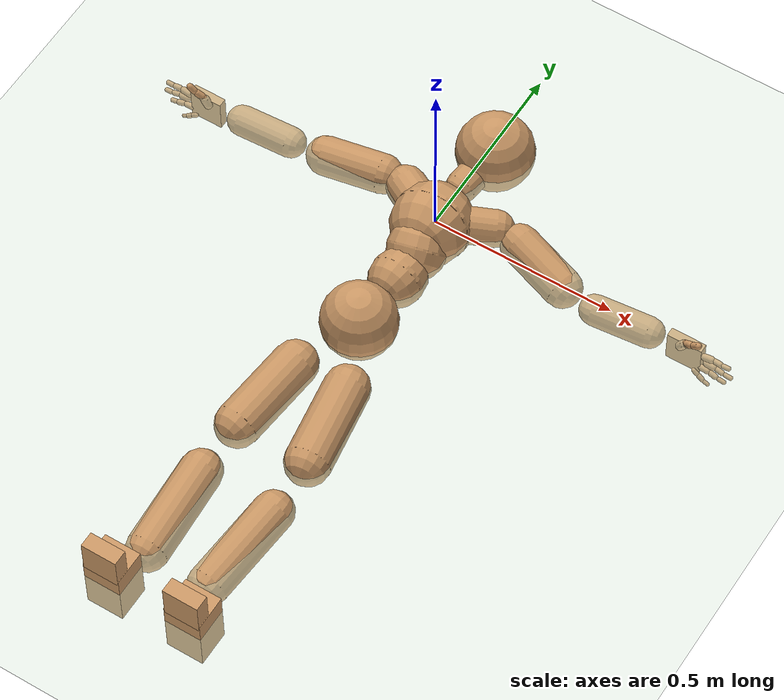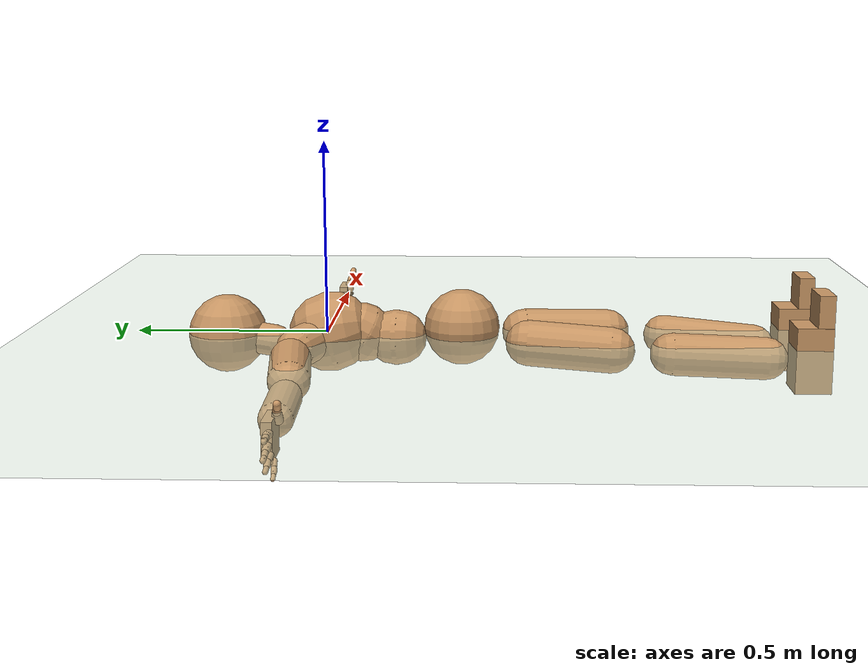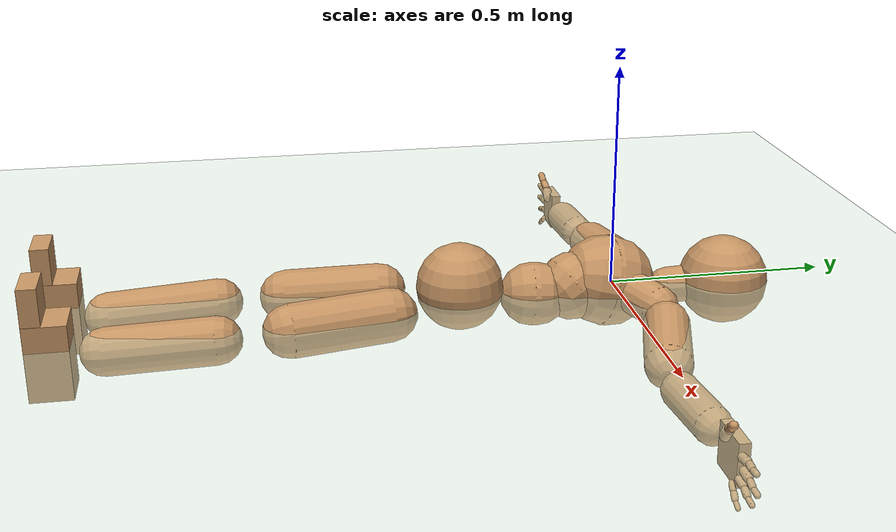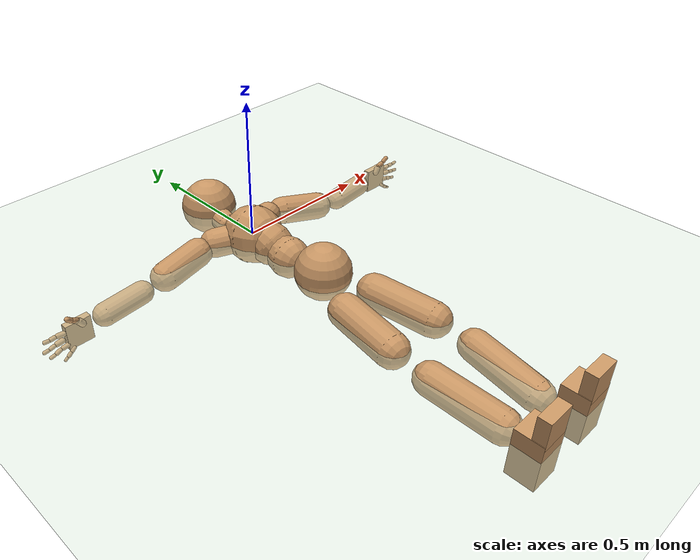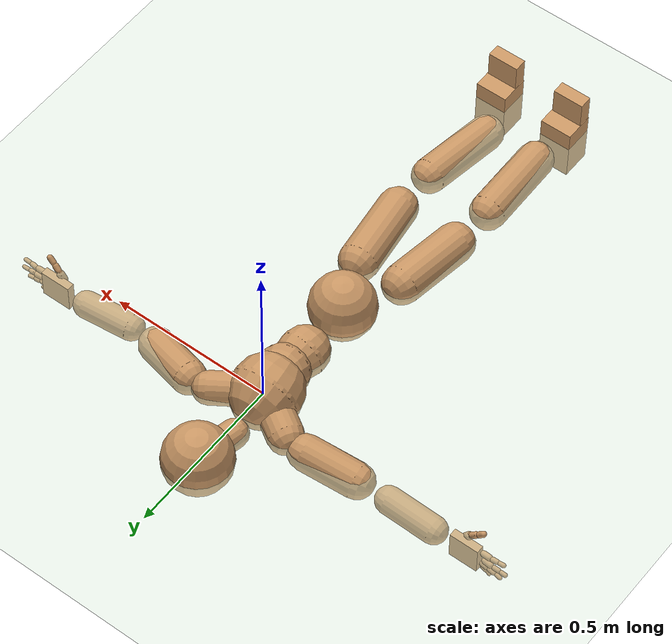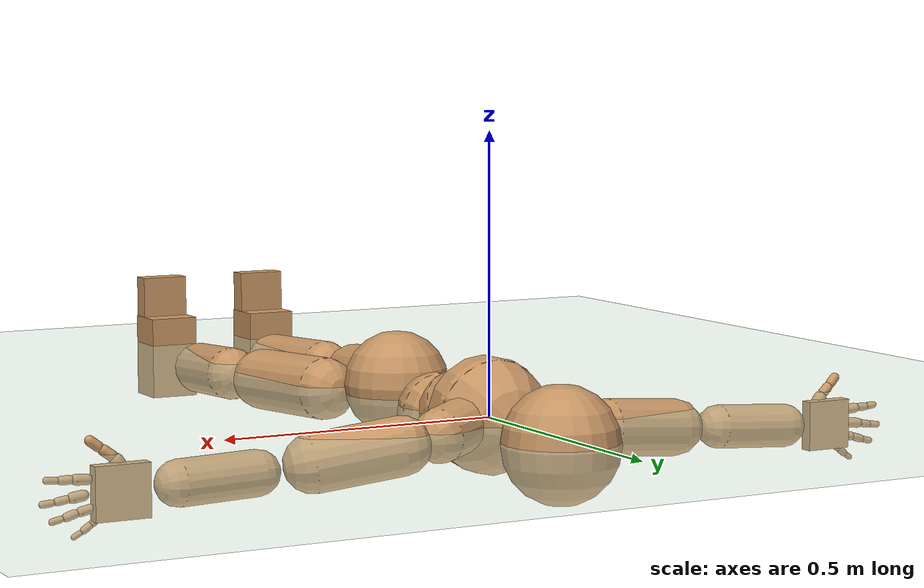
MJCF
<mujoco model="humanoid">
  <compiler coordinate="local"/>
  <default>
    <joint damping="0.0" armature="0.01" stiffness="0.0" limited="true"/>
    <geom conaffinity="1" condim="3" contype="7" margin="0.001" rgba="0.8 0.6 .4 1"/>
  </default>
  <asset>
    <texture type="skybox" builtin="gradient" rgb1=".4 .5 .6" rgb2="0 0 0" width="100" height="100"/>
    <texture builtin="flat" height="1278" mark="cross" markrgb="1 1 1" name="texgeom" random="0.01" rgb1="0.8 0.6 0.4" rgb2="0.8 0.6 0.4" type="cube" width="127"/>
    <texture builtin="checker" height="100" name="texplane" rgb1="0 0 0" rgb2="0.8 0.8 0.8" type="2d" width="100"/>
    <material name="MatPlane" reflectance="0.5" shininess="1" specular="1" texrepeat="60 60" texture="texplane"/>
    <material name="geom" texture="texgeom" texuniform="true"/>
  </asset>
  <worldbody>
    <light cutoff="100" diffuse="1 1 1" dir="-0 0 -1.3" directional="true" exponent="1" pos="0 0 1.3" specular=".1 .1 .1"/>
    <geom conaffinity="1" condim="3" name="floor" pos="0 0 0" rgba="0.8 0.9 0.8 1" size="100 100 .2" type="plane" material="MatPlane"/>
    <body name="Pelvis" pos="0.0031 -0.3534 0.0154">
      <freejoint name="Pelvis"/>
      <geom type="sphere" contype="1" conaffinity="1" density="4629.6296296296305" size="0.0984" pos="0.0000 0.0000 0.0000" name="Pelvis"/>
      <body name="L_Hip" pos="0.0592 -0.092 -0.025">
        <joint name="L_Hip_x" type="hinge" pos="0 0 0" axis="1 0 0" user="250 2.5 1 500 10 2" armature="0.01" range="-90.0000 90.0000" damping="0" stiffness="0"/>
        <joint name="L_Hip_y" type="hinge" pos="0 0 0" axis="0 1 0" user="250 2.5 1 500 10 2" armature="0.01" range="-90.0000 90.0000" damping="0" stiffness="0"/>
        <joint name="L_Hip_z" type="hinge" pos="0 0 0" axis="0 0 1" user="250 2.5 1 500 10 2" armature="0.01" range="-90.0000 90.0000" damping="0" stiffness="0"/>
        <geom type="capsule" contype="1" conaffinity="1" density="2040.816327" fromto="0.0106 -0.0736 -0.0023 0.0423 -0.2943 -0.0093" size="0.0596" name="L_Hip"/>
        <body name="L_Knee" pos="0.0529 -0.3679 -0.0116">
          <joint name="L_Knee_x" type="hinge" pos="0 0 0" axis="1 0 0" user="250 2.5 1 500 10 2" armature="0.01" range="-180.0000 180.0000" damping="0" stiffness="0"/>
          <joint name="L_Knee_y" type="hinge" pos="0 0 0" axis="0 1 0" user="250 2.5 1 500 10 2" armature="0.01" range="-5.6250 5.6250" damping="0" stiffness="0"/>
          <joint name="L_Knee_z" type="hinge" pos="0 0 0" axis="0 0 1" user="250 2.5 1 500 10 2" armature="0.01" range="-5.6250 5.6250" damping="0" stiffness="0"/>
          <geom type="capsule" contype="1" conaffinity="1" density="1234.567901" fromto="-0.0088 -0.0789 -0.0063 -0.0350 -0.3157 -0.0251" size="0.0526" name="L_Knee"/>
          <body name="L_Ankle" pos="-0.0438 -0.3946 -0.0314">
            <joint name="L_Ankle_x" type="hinge" pos="0 0 0" axis="1 0 0" user="150 2.5 1 500 10 2" armature="0.01" range="-90.0000 90.0000" damping="0" stiffness="0"/>
            <joint name="L_Ankle_y" type="hinge" pos="0 0 0" axis="0 1 0" user="150 2.5 1 500 10 2" armature="0.01" range="-90.0000 90.0000" damping="0" stiffness="0"/>
            <joint name="L_Ankle_z" type="hinge" pos="0 0 0" axis="0 0 1" user="150 2.5 1 500 10 2" armature="0.01" range="-90.0000 90.0000" damping="0" stiffness="0"/>
            <geom type="box" density="446.22116" pos="0.0408 -0.0280 0.0230" size="0.0494 0.0457 0.0841" quat="1.0000 0.0000 0.0000 0.0000" name="L_Ankle"/>
            <body name="L_Toe" pos="0.0473 -0.0568 0.1162">
              <joint name="L_Toe_x" type="hinge" pos="0 0 0" axis="1 0 0" user="150 1 1 500 1 1" armature="0.01" range="-90.0000 90.0000" damping="0" stiffness="0"/>
              <joint name="L_Toe_y" type="hinge" pos="0 0 0" axis="0 1 0" user="150 1 1 500 1 1" armature="0.01" range="-45.0000 45.0000" damping="0" stiffness="0"/>
              <joint name="L_Toe_z" type="hinge" pos="0 0 0" axis="0 0 1" user="150 1 1 500 1 1" armature="0.01" range="-45.0000 45.0000" damping="0" stiffness="0"/>
              <geom type="box" density="419.146374" pos="-0.0065 0.0032 0.0252" size="0.0476 0.0202 0.0488" quat="1.0000 0.0000 0.0000 0.0000" name="L_Toe"/>
            </body>
          </body>
        </body>
      </body>
      <body name="R_Hip" pos="-0.0641 -0.1024 -0.021">
        <joint name="R_Hip_x" type="hinge" pos="0 0 0" axis="1 0 0" user="250 2.5 1 500 10 2" armature="0.01" range="-90.0000 90.0000" damping="0" stiffness="0"/>
        <joint name="R_Hip_y" type="hinge" pos="0 0 0" axis="0 1 0" user="250 2.5 1 500 10 2" armature="0.01" range="-90.0000 90.0000" damping="0" stiffness="0"/>
        <joint name="R_Hip_z" type="hinge" pos="0 0 0" axis="0 0 1" user="250 2.5 1 500 10 2" armature="0.01" range="-90.0000 90.0000" damping="0" stiffness="0"/>
        <geom type="capsule" contype="1" conaffinity="1" density="2040.816327" fromto="-0.0085 -0.0705 -0.0037 -0.0341 -0.2820 -0.0148" size="0.0589" name="R_Hip"/>
        <body name="R_Knee" pos="-0.0426 -0.3525 -0.0185">
          <joint name="R_Knee_x" type="hinge" pos="0 0 0" axis="1 0 0" user="250 2.5 1 500 10 2" armature="0.01" range="-180.0000 180.0000" damping="0" stiffness="0"/>
          <joint name="R_Knee_y" type="hinge" pos="0 0 0" axis="0 1 0" user="250 2.5 1 500 10 2" armature="0.01" range="-5.6250 5.6250" damping="0" stiffness="0"/>
          <joint name="R_Knee_z" type="hinge" pos="0 0 0" axis="0 0 1" user="250 2.5 1 500 10 2" armature="0.01" range="-5.6250 5.6250" damping="0" stiffness="0"/>
          <geom type="capsule" contype="1" conaffinity="1" density="1234.567901" fromto="0.0031 -0.0804 -0.0039 0.0126 -0.3215 -0.0157" size="0.0544" name="R_Knee"/>
          <body name="R_Ankle" pos="0.0157 -0.4019 -0.0196">
            <joint name="R_Ankle_x" type="hinge" pos="0 0 0" axis="1 0 0" user="150 1 1 500 10 2" armature="0.01" range="-90.0000 90.0000" damping="0" stiffness="0"/>
            <joint name="R_Ankle_y" type="hinge" pos="0 0 0" axis="0 1 0" user="150 1 1 500 10 2" armature="0.01" range="-90.0000 90.0000" damping="0" stiffness="0"/>
            <joint name="R_Ankle_z" type="hinge" pos="0 0 0" axis="0 0 1" user="150 1 1 500 10 2" armature="0.01" range="-90.0000 90.0000" damping="0" stiffness="0"/>
            <geom type="box" density="446.211943" pos="-0.0244 -0.0257 0.0141" size="0.0494 0.0457 0.0841" quat="1.0000 0.0000 0.0000 0.0000" name="R_Ankle"/>
            <body name="R_Toe" pos="-0.0388 -0.0572 0.117">
              <joint name="R_Toe_x" type="hinge" pos="0 0 0" axis="1 0 0" user="150 1 1 500 1 1" armature="0.01" range="-90.0000 90.0000" damping="0" stiffness="0"/>
              <joint name="R_Toe_y" type="hinge" pos="0 0 0" axis="0 1 0" user="150 1 1 500 1 1" armature="0.01" range="-45.0000 45.0000" damping="0" stiffness="0"/>
              <joint name="R_Toe_z" type="hinge" pos="0 0 0" axis="0 0 1" user="150 1 1 500 1 1" armature="0.01" range="-45.0000 45.0000" damping="0" stiffness="0"/>
              <geom type="box" density="419.154302" pos="0.0144 0.0059 0.0154" size="0.0476 0.0202 0.0488" quat="1.0000 0.0000 0.0000 0.0000" name="R_Toe"/>
            </body>
          </body>
        </body>
      </body>
      <body name="Torso" pos="-0.0026 0.1075 -0.0277">
        <joint name="Torso_x" type="hinge" pos="0 0 0" axis="1 0 0" user="500 5 1 500 10 2" armature="0.01" range="-60.0000 60.0000" damping="0" stiffness="0"/>
        <joint name="Torso_y" type="hinge" pos="0 0 0" axis="0 1 0" user="500 5 1 500 10 2" armature="0.01" range="-60.0000 60.0000" damping="0" stiffness="0"/>
        <joint name="Torso_z" type="hinge" pos="0 0 0" axis="0 0 1" user="500 5 1 500 10 2" armature="0.01" range="-60.0000 60.0000" damping="0" stiffness="0"/>
        <geom type="capsule" contype="1" conaffinity="1" density="2040.816327" fromto="0.0045 0.0575 -0.0023 0.0055 0.0702 -0.0028" size="0.0722" name="Torso"/>
        <body name="Spine" pos="0.01 0.1277 -0.0051">
          <joint name="Spine_x" type="hinge" pos="0 0 0" axis="1 0 0" user="500 5 1 500 10 2" armature="0.01" range="-60.0000 60.0000" damping="0" stiffness="0"/>
          <joint name="Spine_y" type="hinge" pos="0 0 0" axis="0 1 0" user="500 5 1 500 10 2" armature="0.01" range="-60.0000 60.0000" damping="0" stiffness="0"/>
          <joint name="Spine_z" type="hinge" pos="0 0 0" axis="0 0 1" user="500 5 1 500 10 2" armature="0.01" range="-60.0000 60.0000" damping="0" stiffness="0"/>
          <geom type="capsule" contype="1" conaffinity="1" density="2040.816327" fromto="-0.0054 0.0224 0.0145 -0.0066 0.0273 0.0177" size="0.0765" name="Spine"/>
          <body name="Chest" pos="-0.012 0.0497 0.0323">
            <joint name="Chest_x" type="hinge" pos="0 0 0" axis="1 0 0" user="500 5 1 500 10 2" armature="0.01" range="-60.0000 60.0000" damping="0" stiffness="0"/>
            <joint name="Chest_y" type="hinge" pos="0 0 0" axis="0 1 0" user="500 5 1 500 10 2" armature="0.01" range="-60.0000 60.0000" damping="0" stiffness="0"/>
            <joint name="Chest_z" type="hinge" pos="0 0 0" axis="0 0 1" user="500 5 1 500 10 2" armature="0.01" range="-60.0000 60.0000" damping="0" stiffness="0"/>
            <geom type="capsule" contype="1" conaffinity="1" density="2040.816327" fromto="-0.0020 0.0520 -0.0110 -0.0025 0.0635 -0.0134" size="0.1041" name="Chest"/>
            <body name="Neck" pos="-0.012 0.172 -0.0413">
              <joint name="Neck_x" type="hinge" pos="0 0 0" axis="1 0 0" user="150 1 1 250 50 4" armature="0.01" range="-180.0000 180.0000" damping="0" stiffness="0"/>
              <joint name="Neck_y" type="hinge" pos="0 0 0" axis="0 1 0" user="150 1 1 250 50 4" armature="0.01" range="-180.0000 180.0000" damping="0" stiffness="0"/>
              <joint name="Neck_z" type="hinge" pos="0 0 0" axis="0 0 1" user="150 1 1 250 50 4" armature="0.01" range="-180.0000 180.0000" damping="0" stiffness="0"/>
              <geom type="capsule" contype="1" conaffinity="1" density="1000" fromto="0.0049 0.0324 0.0037 0.0196 0.1297 0.0150" size="0.0418" name="Neck"/>
              <body name="Head" pos="0.0245 0.1621 0.0187">
                <joint name="Head_x" type="hinge" pos="0 0 0" axis="1 0 0" user="150 1 1 250 50 4" armature="0.01" range="-90.0000 90.0000" damping="0" stiffness="0"/>
                <joint name="Head_y" type="hinge" pos="0 0 0" axis="0 1 0" user="150 1 1 250 50 4" armature="0.01" range="-90.0000 90.0000" damping="0" stiffness="0"/>
                <joint name="Head_z" type="hinge" pos="0 0 0" axis="0 0 1" user="150 1 1 250 50 4" armature="0.01" range="-90.0000 90.0000" damping="0" stiffness="0"/>
                <geom type="sphere" contype="1" conaffinity="1" density="1000" size="0.1020" pos="0.0000 0.0000 0.0000" name="Head"/>
              </body>
            </body>
            <body name="L_Thorax" pos="0.0454 0.0874 -0.0128">
              <joint name="L_Thorax_x" type="hinge" pos="0 0 0" axis="1 0 0" user="200 2 1 500 50 4" armature="0.01" range="-180.0000 180.0000" damping="0" stiffness="0"/>
              <joint name="L_Thorax_y" type="hinge" pos="0 0 0" axis="0 1 0" user="200 2 1 500 50 4" armature="0.01" range="-180.0000 180.0000" damping="0" stiffness="0"/>
              <joint name="L_Thorax_z" type="hinge" pos="0 0 0" axis="0 0 1" user="200 2 1 500 50 4" armature="0.01" range="-180.0000 180.0000" damping="0" stiffness="0"/>
              <geom type="capsule" contype="1" conaffinity="1" density="1000" fromto="0.0223 0.0123 -0.0034 0.0891 0.0491 -0.0135" size="0.0478" name="L_Thorax"/>
              <body name="L_Shoulder" pos="0.1114 0.0614 -0.0169">
                <joint name="L_Shoulder_x" type="hinge" pos="0 0 0" axis="1 0 0" user="200 2 1 500 50 4" armature="0.01" range="-180.0000 180.0000" damping="0" stiffness="0"/>
                <joint name="L_Shoulder_y" type="hinge" pos="0 0 0" axis="0 1 0" user="200 2 1 500 50 4" armature="0.01" range="-180.0000 180.0000" damping="0" stiffness="0"/>
                <joint name="L_Shoulder_z" type="hinge" pos="0 0 0" axis="0 0 1" user="200 2 1 500 50 4" armature="0.01" range="-180.0000 180.0000" damping="0" stiffness="0"/>
                <geom type="capsule" contype="1" conaffinity="1" density="1000" fromto="0.0488 -0.0139 -0.0081 0.1952 -0.0555 -0.0323" size="0.0516" name="L_Shoulder"/>
                <body name="L_Elbow" pos="0.244 -0.0694 -0.0404">
                  <joint name="L_Elbow_x" type="hinge" pos="0 0 0" axis="1 0 0" user="150 1 1 150 10 2" armature="0.01" range="-720.0000 720.0000" damping="0" stiffness="0"/>
                  <joint name="L_Elbow_y" type="hinge" pos="0 0 0" axis="0 1 0" user="150 1 1 150 10 2" armature="0.01" range="-720.0000 720.0000" damping="0" stiffness="0"/>
                  <joint name="L_Elbow_z" type="hinge" pos="0 0 0" axis="0 0 1" user="150 1 1 150 10 2" armature="0.01" range="-720.0000 720.0000" damping="0" stiffness="0"/>
                  <geom type="capsule" contype="1" conaffinity="1" density="1000" fromto="0.0486 0.0049 -0.0006 0.1945 0.0198 -0.0024" size="0.0397" name="L_Elbow"/>
                  <body name="L_Wrist" pos="0.2432 0.0247 -0.003">
                    <joint name="L_Wrist_x" type="hinge" pos="0 0 0" axis="1 0 0" user="100 1 1 150 1 1" armature="0.01" range="-180.0000 180.0000" damping="0" stiffness="0"/>
                    <joint name="L_Wrist_y" type="hinge" pos="0 0 0" axis="0 1 0" user="100 1 1 150 1 1" armature="0.01" range="-180.0000 180.0000" damping="0" stiffness="0"/>
                    <joint name="L_Wrist_z" type="hinge" pos="0 0 0" axis="0 0 1" user="100 1 1 150 1 1" armature="0.01" range="-180.0000 180.0000" damping="0" stiffness="0"/>
                    <geom type="box" density="1205.90108" pos="0.0510 -0.0008 -0.0031" size="0.0474 0.012 0.0456" quat="1.0000 0.0000 0.0000 0.0000" name="L_Wrist"/>
                    <body name="L_Index1" pos="0.0995 -0.0081 0.0194">
                      <joint name="L_Index1_x" type="hinge" pos="0 0 0" axis="1 0 0" user="100 10 1 150" armature="0.01" range="-180.0000 180.0000" damping="0" stiffness="0"/>
                      <joint name="L_Index1_y" type="hinge" pos="0 0 0" axis="0 1 0" user="100 10 1 150" armature="0.01" range="-180.0000 180.0000" damping="0" stiffness="0"/>
                      <joint name="L_Index1_z" type="hinge" pos="0 0 0" axis="0 0 1" user="100 10 1 150" armature="0.01" range="-180.0000 180.0000" damping="0" stiffness="0"/>
                      <geom type="capsule" contype="1" conaffinity="1" density="1000" fromto="0.0063 0.0005 0.0006 0.0252 0.0018 0.0023" size="0.0091" name="L_Index1"/>
                      <body name="L_Index2" pos="0.0315 0.0023 0.0029">
                        <joint name="L_Index2_x" type="hinge" pos="0 0 0" axis="1 0 0" user="100 10 1 150" armature="0.01" range="-180.0000 180.0000" damping="0" stiffness="0"/>
                        <joint name="L_Index2_y" type="hinge" pos="0 0 0" axis="0 1 0" user="100 10 1 150" armature="0.01" range="-180.0000 180.0000" damping="0" stiffness="0"/>
                        <joint name="L_Index2_z" type="hinge" pos="0 0 0" axis="0 0 1" user="100 10 1 150" armature="0.01" range="-180.0000 180.0000" damping="0" stiffness="0"/>
                        <geom type="capsule" contype="1" conaffinity="1" density="1000" fromto="0.0044 -0.0005 0.0000 0.0177 -0.0018 0.0000" size="0.0075" name="L_Index2"/>
                        <body name="L_Index3" pos="0.0222 -0.0023 0">
                          <joint name="L_Index3_x" type="hinge" pos="0 0 0" axis="1 0 0" user="100 10 1 150" armature="0.01" range="-180.0000 180.0000" damping="0" stiffness="0"/>
                          <joint name="L_Index3_y" type="hinge" pos="0 0 0" axis="0 1 0" user="100 10 1 150" armature="0.01" range="-180.0000 180.0000" damping="0" stiffness="0"/>
                          <joint name="L_Index3_z" type="hinge" pos="0 0 0" axis="0 0 1" user="100 10 1 150" armature="0.01" range="-180.0000 180.0000" damping="0" stiffness="0"/>
                          <geom type="capsule" contype="1" conaffinity="1" density="1000" fromto="0.0048 -0.0001 0.0004 0.0193 -0.0002 0.0016" size="0.0063" name="L_Index3"/>
                        </body>
                      </body>
                    </body>
                    <body name="L_Middle1" pos="0.1069 -0.0057 -0.0039">
                      <joint name="L_Middle1_x" type="hinge" pos="0 0 0" axis="1 0 0" user="100 10 1 150" armature="0.01" range="-180.0000 180.0000" damping="0" stiffness="0"/>
                      <joint name="L_Middle1_y" type="hinge" pos="0 0 0" axis="0 1 0" user="100 10 1 150" armature="0.01" range="-180.0000 180.0000" damping="0" stiffness="0"/>
                      <joint name="L_Middle1_z" type="hinge" pos="0 0 0" axis="0 0 1" user="100 10 1 150" armature="0.01" range="-180.0000 180.0000" damping="0" stiffness="0"/>
                      <geom type="capsule" contype="1" conaffinity="1" density="1000" fromto="0.0060 0.0002 -0.0008 0.0241 0.0007 -0.0033" size="0.0093" name="L_Middle1"/>
                      <body name="L_Middle2" pos="0.0302 0.0009 -0.0041">
                        <joint name="L_Middle2_x" type="hinge" pos="0 0 0" axis="1 0 0" user="100 10 1 150" armature="0.01" range="-180.0000 180.0000" damping="0" stiffness="0"/>
                        <joint name="L_Middle2_y" type="hinge" pos="0 0 0" axis="0 1 0" user="100 10 1 150" armature="0.01" range="-180.0000 180.0000" damping="0" stiffness="0"/>
                        <joint name="L_Middle2_z" type="hinge" pos="0 0 0" axis="0 0 1" user="100 10 1 150" armature="0.01" range="-180.0000 180.0000" damping="0" stiffness="0"/>
                        <geom type="capsule" contype="1" conaffinity="1" density="1000" fromto="0.0046 -0.0004 -0.0008 0.0186 -0.0016 -0.0033" size="0.0069" name="L_Middle2"/>
                        <body name="L_Middle3" pos="0.0232 -0.0019 -0.0042">
                          <joint name="L_Middle3_x" type="hinge" pos="0 0 0" axis="1 0 0" user="100 10 1 150" armature="0.01" range="-180.0000 180.0000" damping="0" stiffness="0"/>
                          <joint name="L_Middle3_y" type="hinge" pos="0 0 0" axis="0 1 0" user="100 10 1 150" armature="0.01" range="-180.0000 180.0000" damping="0" stiffness="0"/>
                          <joint name="L_Middle3_z" type="hinge" pos="0 0 0" axis="0 0 1" user="100 10 1 150" armature="0.01" range="-180.0000 180.0000" damping="0" stiffness="0"/>
                          <geom type="capsule" contype="1" conaffinity="1" density="1000" fromto="0.0050 0.0000 -0.0004 0.0202 0.0000 -0.0017" size="0.006" name="L_Middle3"/>
                        </body>
                      </body>
                    </body>
                    <body name="L_Pinky1" pos="0.0818 -0.0142 -0.0433">
                      <joint name="L_Pinky1_x" type="hinge" pos="0 0 0" axis="1 0 0" user="100 10 1 150" armature="0.01" range="-180.0000 180.0000" damping="0" stiffness="0"/>
                      <joint name="L_Pinky1_y" type="hinge" pos="0 0 0" axis="0 1 0" user="100 10 1 150" armature="0.01" range="-180.0000 180.0000" damping="0" stiffness="0"/>
                      <joint name="L_Pinky1_z" type="hinge" pos="0 0 0" axis="0 0 1" user="100 10 1 150" armature="0.01" range="-180.0000 180.0000" damping="0" stiffness="0"/>
                      <geom type="capsule" contype="1" conaffinity="1" density="1000" fromto="0.0030 -0.0002 -0.0024 0.0121 -0.0009 -0.0095" size="0.0066" name="L_Pinky1"/>
                      <body name="L_Pinky2" pos="0.0151 -0.0011 -0.0118">
                        <joint name="L_Pinky2_x" type="hinge" pos="0 0 0" axis="1 0 0" user="100 10 1 150" armature="0.01" range="-180.0000 180.0000" damping="0" stiffness="0"/>
                        <joint name="L_Pinky2_y" type="hinge" pos="0 0 0" axis="0 1 0" user="100 10 1 150" armature="0.01" range="-180.0000 180.0000" damping="0" stiffness="0"/>
                        <joint name="L_Pinky2_z" type="hinge" pos="0 0 0" axis="0 0 1" user="100 10 1 150" armature="0.01" range="-180.0000 180.0000" damping="0" stiffness="0"/>
                        <geom type="capsule" contype="1" conaffinity="1" density="1000" fromto="0.0031 -0.0003 -0.0022 0.0122 -0.0013 -0.0088" size="0.0065" name="L_Pinky2"/>
                        <body name="L_Pinky3" pos="0.0153 -0.0016 -0.011">
                          <joint name="L_Pinky3_x" type="hinge" pos="0 0 0" axis="1 0 0" user="100 10 1 150" armature="0.01" range="-180.0000 180.0000" damping="0" stiffness="0"/>
                          <joint name="L_Pinky3_y" type="hinge" pos="0 0 0" axis="0 1 0" user="100 10 1 150" armature="0.01" range="-180.0000 180.0000" damping="0" stiffness="0"/>
                          <joint name="L_Pinky3_z" type="hinge" pos="0 0 0" axis="0 0 1" user="100 10 1 150" armature="0.01" range="-180.0000 180.0000" damping="0" stiffness="0"/>
                          <geom type="capsule" contype="1" conaffinity="1" density="1000" fromto="0.0035 0.0001 -0.0018 0.0138 0.0003 -0.0072" size="0.0049" name="L_Pinky3"/>
                        </body>
                      </body>
                    </body>
                    <body name="L_Ring1" pos="0.095 -0.0088 -0.0272">
                      <joint name="L_Ring1_x" type="hinge" pos="0 0 0" axis="1 0 0" user="100 10 1 150" armature="0.01" range="-180.0000 180.0000" damping="0" stiffness="0"/>
                      <joint name="L_Ring1_y" type="hinge" pos="0 0 0" axis="0 1 0" user="100 10 1 150" armature="0.01" range="-180.0000 180.0000" damping="0" stiffness="0"/>
                      <joint name="L_Ring1_z" type="hinge" pos="0 0 0" axis="0 0 1" user="100 10 1 150" armature="0.01" range="-180.0000 180.0000" damping="0" stiffness="0"/>
                      <geom type="capsule" contype="1" conaffinity="1" density="1000" fromto="0.0055 0.0003 -0.0010 0.0221 0.0013 -0.0042" size="0.008" name="L_Ring1"/>
                      <body name="L_Ring2" pos="0.0276 0.0016 -0.0052">
                        <joint name="L_Ring2_x" type="hinge" pos="0 0 0" axis="1 0 0" user="100 10 1 150" armature="0.01" range="-180.0000 180.0000" damping="0" stiffness="0"/>
                        <joint name="L_Ring2_y" type="hinge" pos="0 0 0" axis="0 1 0" user="100 10 1 150" armature="0.01" range="-180.0000 180.0000" damping="0" stiffness="0"/>
                        <joint name="L_Ring2_z" type="hinge" pos="0 0 0" axis="0 0 1" user="100 10 1 150" armature="0.01" range="-180.0000 180.0000" damping="0" stiffness="0"/>
                        <geom type="capsule" contype="1" conaffinity="1" density="1000" fromto="0.0045 -0.0003 -0.0014 0.0180 -0.0011 -0.0057" size="0.0074" name="L_Ring2"/>
                        <body name="L_Ring3" pos="0.0225 -0.0014 -0.0071">
                          <joint name="L_Ring3_x" type="hinge" pos="0 0 0" axis="1 0 0" user="100 10 1 150" armature="0.01" range="-180.0000 180.0000" damping="0" stiffness="0"/>
                          <joint name="L_Ring3_y" type="hinge" pos="0 0 0" axis="0 1 0" user="100 10 1 150" armature="0.01" range="-180.0000 180.0000" damping="0" stiffness="0"/>
                          <joint name="L_Ring3_z" type="hinge" pos="0 0 0" axis="0 0 1" user="100 10 1 150" armature="0.01" range="-180.0000 180.0000" damping="0" stiffness="0"/>
                          <geom type="capsule" contype="1" conaffinity="1" density="1000" fromto="0.0049 0.0001 -0.0010 0.0196 0.0005 -0.0041" size="0.0057" name="L_Ring3"/>
                        </body>
                      </body>
                    </body>
                    <body name="L_Thumb1" pos="0.0391 -0.0172 0.0257">
                      <joint name="L_Thumb1_x" type="hinge" pos="0 0 0" axis="1 0 0" user="100 10 1 150" armature="0.01" range="-180.0000 180.0000" damping="0" stiffness="0"/>
                      <joint name="L_Thumb1_y" type="hinge" pos="0 0 0" axis="0 1 0" user="100 10 1 150" armature="0.01" range="-180.0000 180.0000" damping="0" stiffness="0"/>
                      <joint name="L_Thumb1_z" type="hinge" pos="0 0 0" axis="0 0 1" user="100 10 1 150" armature="0.01" range="-180.0000 180.0000" damping="0" stiffness="0"/>
                      <geom type="capsule" contype="1" conaffinity="1" density="1000" fromto="0.0033 0.0002 0.0049 0.0133 0.0007 0.0196" size="0.0118" name="L_Thumb1"/>
                      <body name="L_Thumb2" pos="0.0167 0.0009 0.0245">
                        <joint name="L_Thumb2_x" type="hinge" pos="0 0 0" axis="1 0 0" user="100 10 1 150" armature="0.01" range="-180.0000 180.0000" damping="0" stiffness="0"/>
                        <joint name="L_Thumb2_y" type="hinge" pos="0 0 0" axis="0 1 0" user="100 10 1 150" armature="0.01" range="-180.0000 180.0000" damping="0" stiffness="0"/>
                        <joint name="L_Thumb2_z" type="hinge" pos="0 0 0" axis="0 0 1" user="100 10 1 150" armature="0.01" range="-180.0000 180.0000" damping="0" stiffness="0"/>
                        <geom type="capsule" contype="1" conaffinity="1" density="1000" fromto="0.0041 -0.0010 0.0030 0.0162 -0.0041 0.0122" size="0.0094" name="L_Thumb2"/>
                        <body name="L_Thumb3" pos="0.0203 -0.0051 0.0152">
                          <joint name="L_Thumb3_x" type="hinge" pos="0 0 0" axis="1 0 0" user="100 10 1 150" armature="0.01" range="-180.0000 180.0000" damping="0" stiffness="0"/>
                          <joint name="L_Thumb3_y" type="hinge" pos="0 0 0" axis="0 1 0" user="100 10 1 150" armature="0.01" range="-180.0000 180.0000" damping="0" stiffness="0"/>
                          <joint name="L_Thumb3_z" type="hinge" pos="0 0 0" axis="0 0 1" user="100 10 1 150" armature="0.01" range="-180.0000 180.0000" damping="0" stiffness="0"/>
                          <geom type="capsule" contype="1" conaffinity="1" density="1000" fromto="0.0045 -0.0006 0.0034 0.0178 -0.0025 0.0138" size="0.0087" name="L_Thumb3"/>
                        </body>
                      </body>
                    </body>
                  </body>
                </body>
              </body>
            </body>
            <body name="R_Thorax" pos="-0.0467 0.0869 -0.0191">
              <joint name="R_Thorax_x" type="hinge" pos="0 0 0" axis="1 0 0" user="200 2 1 150 10 2" armature="0.01" range="-180.0000 180.0000" damping="0" stiffness="0"/>
              <joint name="R_Thorax_y" type="hinge" pos="0 0 0" axis="0 1 0" user="200 2 1 150 10 2" armature="0.01" range="-180.0000 180.0000" damping="0" stiffness="0"/>
              <joint name="R_Thorax_z" type="hinge" pos="0 0 0" axis="0 0 1" user="200 2 1 150 10 2" armature="0.01" range="-180.0000 180.0000" damping="0" stiffness="0"/>
              <geom type="capsule" contype="1" conaffinity="1" density="1000" fromto="-0.0190 0.0113 -0.0028 -0.0761 0.0451 -0.0112" size="0.0527" name="R_Thorax"/>
              <body name="R_Shoulder" pos="-0.0952 0.0563 -0.014">
                <joint name="R_Shoulder_x" type="hinge" pos="0 0 0" axis="1 0 0" user="200 2 1 250 10 2" armature="0.01" range="-180.0000 180.0000" damping="0" stiffness="0"/>
                <joint name="R_Shoulder_y" type="hinge" pos="0 0 0" axis="0 1 0" user="200 2 1 250 10 2" armature="0.01" range="-180.0000 180.0000" damping="0" stiffness="0"/>
                <joint name="R_Shoulder_z" type="hinge" pos="0 0 0" axis="0 0 1" user="200 2 1 250 10 2" armature="0.01" range="-180.0000 180.0000" damping="0" stiffness="0"/>
                <geom type="capsule" contype="1" conaffinity="1" density="1000" fromto="-0.0520 -0.0065 -0.0049 -0.2081 -0.0262 -0.0195" size="0.0515" name="R_Shoulder"/>
                <body name="R_Elbow" pos="-0.2602 -0.0327 -0.0244">
                  <joint name="R_Elbow_x" type="hinge" pos="0 0 0" axis="1 0 0" user="150 1 1 150 10 2" armature="0.01" range="-720.0000 720.0000" damping="0" stiffness="0"/>
                  <joint name="R_Elbow_y" type="hinge" pos="0 0 0" axis="0 1 0" user="150 1 1 150 10 2" armature="0.01" range="-720.0000 720.0000" damping="0" stiffness="0"/>
                  <joint name="R_Elbow_z" type="hinge" pos="0 0 0" axis="0 0 1" user="150 1 1 150 10 2" armature="0.01" range="-720.0000 720.0000" damping="0" stiffness="0"/>
                  <geom type="capsule" contype="1" conaffinity="1" density="1000" fromto="-0.0482 -0.0007 -0.0031 -0.1927 -0.0026 -0.0124" size="0.04" name="R_Elbow"/>
                  <body name="R_Wrist" pos="-0.2408 -0.0033 -0.0155">
                    <joint name="R_Wrist_x" type="hinge" pos="0 0 0" axis="1 0 0" user="100 1 1 150 1 1" armature="0.01" range="-180.0000 180.0000" damping="0" stiffness="0"/>
                    <joint name="R_Wrist_y" type="hinge" pos="0 0 0" axis="0 1 0" user="100 1 1 150 1 1" armature="0.01" range="-180.0000 180.0000" damping="0" stiffness="0"/>
                    <joint name="R_Wrist_z" type="hinge" pos="0 0 0" axis="0 0 1" user="100 1 1 150 1 1" armature="0.01" range="-180.0000 180.0000" damping="0" stiffness="0"/>
                    <geom type="box" density="1242.39938" pos="-0.0525 -0.0039 -0.0032" size="0.0444 0.012 0.0456" quat="1.0000 0.0000 0.0000 0.0000" name="R_Wrist"/>
                    <body name="R_Index1" pos="-0.0976 -0.0112 0.0193">
                      <joint name="R_Index1_x" type="hinge" pos="0 0 0" axis="1 0 0" user="100 10 1 150" armature="0.01" range="-180.0000 180.0000" damping="0" stiffness="0"/>
                      <joint name="R_Index1_y" type="hinge" pos="0 0 0" axis="0 1 0" user="100 10 1 150" armature="0.01" range="-180.0000 180.0000" damping="0" stiffness="0"/>
                      <joint name="R_Index1_z" type="hinge" pos="0 0 0" axis="0 0 1" user="100 10 1 150" armature="0.01" range="-180.0000 180.0000" damping="0" stiffness="0"/>
                      <geom type="capsule" contype="1" conaffinity="1" density="1000" fromto="-0.0063 0.0005 0.0006 -0.0252 0.0018 0.0023" size="0.0091" name="R_Index1"/>
                      <body name="R_Index2" pos="-0.0315 0.0023 0.0029">
                        <joint name="R_Index2_x" type="hinge" pos="0 0 0" axis="1 0 0" user="100 10 1 150" armature="0.01" range="-180.0000 180.0000" damping="0" stiffness="0"/>
                        <joint name="R_Index2_y" type="hinge" pos="0 0 0" axis="0 1 0" user="100 10 1 150" armature="0.01" range="-180.0000 180.0000" damping="0" stiffness="0"/>
                        <joint name="R_Index2_z" type="hinge" pos="0 0 0" axis="0 0 1" user="100 10 1 150" armature="0.01" range="-180.0000 180.0000" damping="0" stiffness="0"/>
                        <geom type="capsule" contype="1" conaffinity="1" density="1000" fromto="-0.0044 -0.0005 0.0000 -0.0177 -0.0018 0.0000" size="0.0075" name="R_Index2"/>
                        <body name="R_Index3" pos="-0.0222 -0.0023 0">
                          <joint name="R_Index3_x" type="hinge" pos="0 0 0" axis="1 0 0" user="100 10 1 150" armature="0.01" range="-180.0000 180.0000" damping="0" stiffness="0"/>
                          <joint name="R_Index3_y" type="hinge" pos="0 0 0" axis="0 1 0" user="100 10 1 150" armature="0.01" range="-180.0000 180.0000" damping="0" stiffness="0"/>
                          <joint name="R_Index3_z" type="hinge" pos="0 0 0" axis="0 0 1" user="100 10 1 150" armature="0.01" range="-180.0000 180.0000" damping="0" stiffness="0"/>
                          <geom type="capsule" contype="1" conaffinity="1" density="1000" fromto="-0.0040 -0.0001 0.0004 -0.0161 -0.0002 0.0016" size="0.0066" name="R_Index3"/>
                        </body>
                      </body>
                    </body>
                    <body name="R_Middle1" pos="-0.1049 -0.0089 -0.004">
                      <joint name="R_Middle1_x" type="hinge" pos="0 0 0" axis="1 0 0" user="100 10 1 150" armature="0.01" range="-180.0000 180.0000" damping="0" stiffness="0"/>
                      <joint name="R_Middle1_y" type="hinge" pos="0 0 0" axis="0 1 0" user="100 10 1 150" armature="0.01" range="-180.0000 180.0000" damping="0" stiffness="0"/>
                      <joint name="R_Middle1_z" type="hinge" pos="0 0 0" axis="0 0 1" user="100 10 1 150" armature="0.01" range="-180.0000 180.0000" damping="0" stiffness="0"/>
                      <geom type="capsule" contype="1" conaffinity="1" density="1000" fromto="-0.0060 0.0002 -0.0008 -0.0241 0.0007 -0.0033" size="0.0093" name="R_Middle1"/>
                      <body name="R_Middle2" pos="-0.0302 0.0009 -0.0041">
                        <joint name="R_Middle2_x" type="hinge" pos="0 0 0" axis="1 0 0" user="100 10 1 150" armature="0.01" range="-180.0000 180.0000" damping="0" stiffness="0"/>
                        <joint name="R_Middle2_y" type="hinge" pos="0 0 0" axis="0 1 0" user="100 10 1 150" armature="0.01" range="-180.0000 180.0000" damping="0" stiffness="0"/>
                        <joint name="R_Middle2_z" type="hinge" pos="0 0 0" axis="0 0 1" user="100 10 1 150" armature="0.01" range="-180.0000 180.0000" damping="0" stiffness="0"/>
                        <geom type="capsule" contype="1" conaffinity="1" density="1000" fromto="-0.0046 -0.0004 -0.0008 -0.0186 -0.0016 -0.0033" size="0.0069" name="R_Middle2"/>
                        <body name="R_Middle3" pos="-0.0232 -0.0019 -0.0042">
                          <joint name="R_Middle3_x" type="hinge" pos="0 0 0" axis="1 0 0" user="100 10 1 150" armature="0.01" range="-180.0000 180.0000" damping="0" stiffness="0"/>
                          <joint name="R_Middle3_y" type="hinge" pos="0 0 0" axis="0 1 0" user="100 10 1 150" armature="0.01" range="-180.0000 180.0000" damping="0" stiffness="0"/>
                          <joint name="R_Middle3_z" type="hinge" pos="0 0 0" axis="0 0 1" user="100 10 1 150" armature="0.01" range="-180.0000 180.0000" damping="0" stiffness="0"/>
                          <geom type="capsule" contype="1" conaffinity="1" density="1000" fromto="-0.0042 0.0000 -0.0004 -0.0170 0.0000 -0.0017" size="0.0063" name="R_Middle3"/>
                        </body>
                      </body>
                    </body>
                    <body name="R_Pinky1" pos="-0.0798 -0.0173 -0.0435">
                      <joint name="R_Pinky1_x" type="hinge" pos="0 0 0" axis="1 0 0" user="100 10 1 150" armature="0.01" range="-180.0000 180.0000" damping="0" stiffness="0"/>
                      <joint name="R_Pinky1_y" type="hinge" pos="0 0 0" axis="0 1 0" user="100 10 1 150" armature="0.01" range="-180.0000 180.0000" damping="0" stiffness="0"/>
                      <joint name="R_Pinky1_z" type="hinge" pos="0 0 0" axis="0 0 1" user="100 10 1 150" armature="0.01" range="-180.0000 180.0000" damping="0" stiffness="0"/>
                      <geom type="capsule" contype="1" conaffinity="1" density="1000" fromto="-0.0030 -0.0002 -0.0024 -0.0121 -0.0009 -0.0095" size="0.0066" name="R_Pinky1"/>
                      <body name="R_Pinky2" pos="-0.0151 -0.0011 -0.0118">
                        <joint name="R_Pinky2_x" type="hinge" pos="0 0 0" axis="1 0 0" user="100 10 1 150" armature="0.01" range="-180.0000 180.0000" damping="0" stiffness="0"/>
                        <joint name="R_Pinky2_y" type="hinge" pos="0 0 0" axis="0 1 0" user="100 10 1 150" armature="0.01" range="-180.0000 180.0000" damping="0" stiffness="0"/>
                        <joint name="R_Pinky2_z" type="hinge" pos="0 0 0" axis="0 0 1" user="100 10 1 150" armature="0.01" range="-180.0000 180.0000" damping="0" stiffness="0"/>
                        <geom type="capsule" contype="1" conaffinity="1" density="1000" fromto="-0.0031 -0.0003 -0.0022 -0.0122 -0.0013 -0.0088" size="0.0065" name="R_Pinky2"/>
                        <body name="R_Pinky3" pos="-0.0153 -0.0016 -0.011">
                          <joint name="R_Pinky3_x" type="hinge" pos="0 0 0" axis="1 0 0" user="100 10 1 150" armature="0.01" range="-180.0000 180.0000" damping="0" stiffness="0"/>
                          <joint name="R_Pinky3_y" type="hinge" pos="0 0 0" axis="0 1 0" user="100 10 1 150" armature="0.01" range="-180.0000 180.0000" damping="0" stiffness="0"/>
                          <joint name="R_Pinky3_z" type="hinge" pos="0 0 0" axis="0 0 1" user="100 10 1 150" armature="0.01" range="-180.0000 180.0000" damping="0" stiffness="0"/>
                          <geom type="capsule" contype="1" conaffinity="1" density="1000" fromto="-0.0027 0.0001 -0.0018 -0.0106 0.0003 -0.0072" size="0.0051" name="R_Pinky3"/>
                        </body>
                      </body>
                    </body>
                    <body name="R_Ring1" pos="-0.093 -0.0119 -0.0273">
                      <joint name="R_Ring1_x" type="hinge" pos="0 0 0" axis="1 0 0" user="100 10 1 150" armature="0.01" range="-180.0000 180.0000" damping="0" stiffness="0"/>
                      <joint name="R_Ring1_y" type="hinge" pos="0 0 0" axis="0 1 0" user="100 10 1 150" armature="0.01" range="-180.0000 180.0000" damping="0" stiffness="0"/>
                      <joint name="R_Ring1_z" type="hinge" pos="0 0 0" axis="0 0 1" user="100 10 1 150" armature="0.01" range="-180.0000 180.0000" damping="0" stiffness="0"/>
                      <geom type="capsule" contype="1" conaffinity="1" density="1000" fromto="-0.0055 0.0003 -0.0010 -0.0221 0.0013 -0.0042" size="0.008" name="R_Ring1"/>
                      <body name="R_Ring2" pos="-0.0276 0.0016 -0.0052">
                        <joint name="R_Ring2_x" type="hinge" pos="0 0 0" axis="1 0 0" user="100 10 1 150" armature="0.01" range="-180.0000 180.0000" damping="0" stiffness="0"/>
                        <joint name="R_Ring2_y" type="hinge" pos="0 0 0" axis="0 1 0" user="100 10 1 150" armature="0.01" range="-180.0000 180.0000" damping="0" stiffness="0"/>
                        <joint name="R_Ring2_z" type="hinge" pos="0 0 0" axis="0 0 1" user="100 10 1 150" armature="0.01" range="-180.0000 180.0000" damping="0" stiffness="0"/>
                        <geom type="capsule" contype="1" conaffinity="1" density="1000" fromto="-0.0045 -0.0003 -0.0014 -0.0180 -0.0011 -0.0057" size="0.0074" name="R_Ring2"/>
                        <body name="R_Ring3" pos="-0.0225 -0.0014 -0.0071">
                          <joint name="R_Ring3_x" type="hinge" pos="0 0 0" axis="1 0 0" user="100 10 1 150" armature="0.01" range="-180.0000 180.0000" damping="0" stiffness="0"/>
                          <joint name="R_Ring3_y" type="hinge" pos="0 0 0" axis="0 1 0" user="100 10 1 150" armature="0.01" range="-180.0000 180.0000" damping="0" stiffness="0"/>
                          <joint name="R_Ring3_z" type="hinge" pos="0 0 0" axis="0 0 1" user="100 10 1 150" armature="0.01" range="-180.0000 180.0000" damping="0" stiffness="0"/>
                          <geom type="capsule" contype="1" conaffinity="1" density="1000" fromto="-0.0041 0.0001 -0.0010 -0.0164 0.0005 -0.0041" size="0.006" name="R_Ring3"/>
                        </body>
                      </body>
                    </body>
                    <body name="R_Thumb1" pos="-0.0371 -0.0203 0.0256">
                      <joint name="R_Thumb1_x" type="hinge" pos="0 0 0" axis="1 0 0" user="100 10 1 150" armature="0.01" range="-180.0000 180.0000" damping="0" stiffness="0"/>
                      <joint name="R_Thumb1_y" type="hinge" pos="0 0 0" axis="0 1 0" user="100 10 1 150" armature="0.01" range="-180.0000 180.0000" damping="0" stiffness="0"/>
                      <joint name="R_Thumb1_z" type="hinge" pos="0 0 0" axis="0 0 1" user="100 10 1 150" armature="0.01" range="-180.0000 180.0000" damping="0" stiffness="0"/>
                      <geom type="capsule" contype="1" conaffinity="1" density="1000" fromto="-0.0033 0.0002 0.0049 -0.0133 0.0007 0.0196" size="0.0118" name="R_Thumb1"/>
                      <body name="R_Thumb2" pos="-0.0167 0.0009 0.0245">
                        <joint name="R_Thumb2_x" type="hinge" pos="0 0 0" axis="1 0 0" user="100 10 1 150" armature="0.01" range="-180.0000 180.0000" damping="0" stiffness="0"/>
                        <joint name="R_Thumb2_y" type="hinge" pos="0 0 0" axis="0 1 0" user="100 10 1 150" armature="0.01" range="-180.0000 180.0000" damping="0" stiffness="0"/>
                        <joint name="R_Thumb2_z" type="hinge" pos="0 0 0" axis="0 0 1" user="100 10 1 150" armature="0.01" range="-180.0000 180.0000" damping="0" stiffness="0"/>
                        <geom type="capsule" contype="1" conaffinity="1" density="1000" fromto="-0.0041 -0.0010 0.0030 -0.0162 -0.0041 0.0122" size="0.0094" name="R_Thumb2"/>
                        <body name="R_Thumb3" pos="-0.0203 -0.0051 0.0152">
                          <joint name="R_Thumb3_x" type="hinge" pos="0 0 0" axis="1 0 0" user="100 10 1 150" armature="0.01" range="-180.0000 180.0000" damping="0" stiffness="0"/>
                          <joint name="R_Thumb3_y" type="hinge" pos="0 0 0" axis="0 1 0" user="100 10 1 150" armature="0.01" range="-180.0000 180.0000" damping="0" stiffness="0"/>
                          <joint name="R_Thumb3_z" type="hinge" pos="0 0 0" axis="0 0 1" user="100 10 1 150" armature="0.01" range="-180.0000 180.0000" damping="0" stiffness="0"/>
                          <geom type="capsule" contype="1" conaffinity="1" density="1000" fromto="-0.0037 -0.0006 0.0034 -0.0146 -0.0025 0.0138" size="0.0089" name="R_Thumb3"/>
                        </body>
                      </body>
                    </body>
                  </body>
                </body>
              </body>
            </body>
          </body>
        </body>
      </body>
    </body>
  </worldbody>
  <actuator>
    <motor name="L_Hip_x" joint="L_Hip_x" gear="1"/>
    <motor name="L_Hip_y" joint="L_Hip_y" gear="1"/>
    <motor name="L_Hip_z" joint="L_Hip_z" gear="1"/>
    <motor name="L_Knee_x" joint="L_Knee_x" gear="1"/>
    <motor name="L_Knee_y" joint="L_Knee_y" gear="1"/>
    <motor name="L_Knee_z" joint="L_Knee_z" gear="1"/>
    <motor name="L_Ankle_x" joint="L_Ankle_x" gear="1"/>
    <motor name="L_Ankle_y" joint="L_Ankle_y" gear="1"/>
    <motor name="L_Ankle_z" joint="L_Ankle_z" gear="1"/>
    <motor name="L_Toe_x" joint="L_Toe_x" gear="1"/>
    <motor name="L_Toe_y" joint="L_Toe_y" gear="1"/>
    <motor name="L_Toe_z" joint="L_Toe_z" gear="1"/>
    <motor name="R_Hip_x" joint="R_Hip_x" gear="1"/>
    <motor name="R_Hip_y" joint="R_Hip_y" gear="1"/>
    <motor name="R_Hip_z" joint="R_Hip_z" gear="1"/>
    <motor name="R_Knee_x" joint="R_Knee_x" gear="1"/>
    <motor name="R_Knee_y" joint="R_Knee_y" gear="1"/>
    <motor name="R_Knee_z" joint="R_Knee_z" gear="1"/>
    <motor name="R_Ankle_x" joint="R_Ankle_x" gear="1"/>
    <motor name="R_Ankle_y" joint="R_Ankle_y" gear="1"/>
    <motor name="R_Ankle_z" joint="R_Ankle_z" gear="1"/>
    <motor name="R_Toe_x" joint="R_Toe_x" gear="1"/>
    <motor name="R_Toe_y" joint="R_Toe_y" gear="1"/>
    <motor name="R_Toe_z" joint="R_Toe_z" gear="1"/>
    <motor name="Torso_x" joint="Torso_x" gear="1"/>
    <motor name="Torso_y" joint="Torso_y" gear="1"/>
    <motor name="Torso_z" joint="Torso_z" gear="1"/>
    <motor name="Spine_x" joint="Spine_x" gear="1"/>
    <motor name="Spine_y" joint="Spine_y" gear="1"/>
    <motor name="Spine_z" joint="Spine_z" gear="1"/>
    <motor name="Chest_x" joint="Chest_x" gear="1"/>
    <motor name="Chest_y" joint="Chest_y" gear="1"/>
    <motor name="Chest_z" joint="Chest_z" gear="1"/>
    <motor name="Neck_x" joint="Neck_x" gear="1"/>
    <motor name="Neck_y" joint="Neck_y" gear="1"/>
    <motor name="Neck_z" joint="Neck_z" gear="1"/>
    <motor name="Head_x" joint="Head_x" gear="1"/>
    <motor name="Head_y" joint="Head_y" gear="1"/>
    <motor name="Head_z" joint="Head_z" gear="1"/>
    <motor name="L_Thorax_x" joint="L_Thorax_x" gear="1"/>
    <motor name="L_Thorax_y" joint="L_Thorax_y" gear="1"/>
    <motor name="L_Thorax_z" joint="L_Thorax_z" gear="1"/>
    <motor name="L_Shoulder_x" joint="L_Shoulder_x" gear="1"/>
    <motor name="L_Shoulder_y" joint="L_Shoulder_y" gear="1"/>
    <motor name="L_Shoulder_z" joint="L_Shoulder_z" gear="1"/>
    <motor name="L_Elbow_x" joint="L_Elbow_x" gear="1"/>
    <motor name="L_Elbow_y" joint="L_Elbow_y" gear="1"/>
    <motor name="L_Elbow_z" joint="L_Elbow_z" gear="1"/>
    <motor name="L_Wrist_x" joint="L_Wrist_x" gear="1"/>
    <motor name="L_Wrist_y" joint="L_Wrist_y" gear="1"/>
    <motor name="L_Wrist_z" joint="L_Wrist_z" gear="1"/>
    <motor name="L_Index1_x" joint="L_Index1_x" gear="1"/>
    <motor name="L_Index1_y" joint="L_Index1_y" gear="1"/>
    <motor name="L_Index1_z" joint="L_Index1_z" gear="1"/>
    <motor name="L_Index2_x" joint="L_Index2_x" gear="1"/>
    <motor name="L_Index2_y" joint="L_Index2_y" gear="1"/>
    <motor name="L_Index2_z" joint="L_Index2_z" gear="1"/>
    <motor name="L_Index3_x" joint="L_Index3_x" gear="1"/>
    <motor name="L_Index3_y" joint="L_Index3_y" gear="1"/>
    <motor name="L_Index3_z" joint="L_Index3_z" gear="1"/>
    <motor name="L_Middle1_x" joint="L_Middle1_x" gear="1"/>
    <motor name="L_Middle1_y" joint="L_Middle1_y" gear="1"/>
    <motor name="L_Middle1_z" joint="L_Middle1_z" gear="1"/>
    <motor name="L_Middle2_x" joint="L_Middle2_x" gear="1"/>
    <motor name="L_Middle2_y" joint="L_Middle2_y" gear="1"/>
    <motor name="L_Middle2_z" joint="L_Middle2_z" gear="1"/>
    <motor name="L_Middle3_x" joint="L_Middle3_x" gear="1"/>
    <motor name="L_Middle3_y" joint="L_Middle3_y" gear="1"/>
    <motor name="L_Middle3_z" joint="L_Middle3_z" gear="1"/>
    <motor name="L_Pinky1_x" joint="L_Pinky1_x" gear="1"/>
    <motor name="L_Pinky1_y" joint="L_Pinky1_y" gear="1"/>
    <motor name="L_Pinky1_z" joint="L_Pinky1_z" gear="1"/>
    <motor name="L_Pinky2_x" joint="L_Pinky2_x" gear="1"/>
    <motor name="L_Pinky2_y" joint="L_Pinky2_y" gear="1"/>
    <motor name="L_Pinky2_z" joint="L_Pinky2_z" gear="1"/>
    <motor name="L_Pinky3_x" joint="L_Pinky3_x" gear="1"/>
    <motor name="L_Pinky3_y" joint="L_Pinky3_y" gear="1"/>
    <motor name="L_Pinky3_z" joint="L_Pinky3_z" gear="1"/>
    <motor name="L_Ring1_x" joint="L_Ring1_x" gear="1"/>
    <motor name="L_Ring1_y" joint="L_Ring1_y" gear="1"/>
    <motor name="L_Ring1_z" joint="L_Ring1_z" gear="1"/>
    <motor name="L_Ring2_x" joint="L_Ring2_x" gear="1"/>
    <motor name="L_Ring2_y" joint="L_Ring2_y" gear="1"/>
    <motor name="L_Ring2_z" joint="L_Ring2_z" gear="1"/>
    <motor name="L_Ring3_x" joint="L_Ring3_x" gear="1"/>
    <motor name="L_Ring3_y" joint="L_Ring3_y" gear="1"/>
    <motor name="L_Ring3_z" joint="L_Ring3_z" gear="1"/>
    <motor name="L_Thumb1_x" joint="L_Thumb1_x" gear="1"/>
    <motor name="L_Thumb1_y" joint="L_Thumb1_y" gear="1"/>
    <motor name="L_Thumb1_z" joint="L_Thumb1_z" gear="1"/>
    <motor name="L_Thumb2_x" joint="L_Thumb2_x" gear="1"/>
    <motor name="L_Thumb2_y" joint="L_Thumb2_y" gear="1"/>
    <motor name="L_Thumb2_z" joint="L_Thumb2_z" gear="1"/>
    <motor name="L_Thumb3_x" joint="L_Thumb3_x" gear="1"/>
    <motor name="L_Thumb3_y" joint="L_Thumb3_y" gear="1"/>
    <motor name="L_Thumb3_z" joint="L_Thumb3_z" gear="1"/>
    <motor name="R_Thorax_x" joint="R_Thorax_x" gear="1"/>
    <motor name="R_Thorax_y" joint="R_Thorax_y" gear="1"/>
    <motor name="R_Thorax_z" joint="R_Thorax_z" gear="1"/>
    <motor name="R_Shoulder_x" joint="R_Shoulder_x" gear="1"/>
    <motor name="R_Shoulder_y" joint="R_Shoulder_y" gear="1"/>
    <motor name="R_Shoulder_z" joint="R_Shoulder_z" gear="1"/>
    <motor name="R_Elbow_x" joint="R_Elbow_x" gear="1"/>
    <motor name="R_Elbow_y" joint="R_Elbow_y" gear="1"/>
    <motor name="R_Elbow_z" joint="R_Elbow_z" gear="1"/>
    <motor name="R_Wrist_x" joint="R_Wrist_x" gear="1"/>
    <motor name="R_Wrist_y" joint="R_Wrist_y" gear="1"/>
    <motor name="R_Wrist_z" joint="R_Wrist_z" gear="1"/>
    <motor name="R_Index1_x" joint="R_Index1_x" gear="1"/>
    <motor name="R_Index1_y" joint="R_Index1_y" gear="1"/>
    <motor name="R_Index1_z" joint="R_Index1_z" gear="1"/>
    <motor name="R_Index2_x" joint="R_Index2_x" gear="1"/>
    <motor name="R_Index2_y" joint="R_Index2_y" gear="1"/>
    <motor name="R_Index2_z" joint="R_Index2_z" gear="1"/>
    <motor name="R_Index3_x" joint="R_Index3_x" gear="1"/>
    <motor name="R_Index3_y" joint="R_Index3_y" gear="1"/>
    <motor name="R_Index3_z" joint="R_Index3_z" gear="1"/>
    <motor name="R_Middle1_x" joint="R_Middle1_x" gear="1"/>
    <motor name="R_Middle1_y" joint="R_Middle1_y" gear="1"/>
    <motor name="R_Middle1_z" joint="R_Middle1_z" gear="1"/>
    <motor name="R_Middle2_x" joint="R_Middle2_x" gear="1"/>
    <motor name="R_Middle2_y" joint="R_Middle2_y" gear="1"/>
    <motor name="R_Middle2_z" joint="R_Middle2_z" gear="1"/>
    <motor name="R_Middle3_x" joint="R_Middle3_x" gear="1"/>
    <motor name="R_Middle3_y" joint="R_Middle3_y" gear="1"/>
    <motor name="R_Middle3_z" joint="R_Middle3_z" gear="1"/>
    <motor name="R_Pinky1_x" joint="R_Pinky1_x" gear="1"/>
    <motor name="R_Pinky1_y" joint="R_Pinky1_y" gear="1"/>
    <motor name="R_Pinky1_z" joint="R_Pinky1_z" gear="1"/>
    <motor name="R_Pinky2_x" joint="R_Pinky2_x" gear="1"/>
    <motor name="R_Pinky2_y" joint="R_Pinky2_y" gear="1"/>
    <motor name="R_Pinky2_z" joint="R_Pinky2_z" gear="1"/>
    <motor name="R_Pinky3_x" joint="R_Pinky3_x" gear="1"/>
    <motor name="R_Pinky3_y" joint="R_Pinky3_y" gear="1"/>
    <motor name="R_Pinky3_z" joint="R_Pinky3_z" gear="1"/>
    <motor name="R_Ring1_x" joint="R_Ring1_x" gear="1"/>
    <motor name="R_Ring1_y" joint="R_Ring1_y" gear="1"/>
    <motor name="R_Ring1_z" joint="R_Ring1_z" gear="1"/>
    <motor name="R_Ring2_x" joint="R_Ring2_x" gear="1"/>
    <motor name="R_Ring2_y" joint="R_Ring2_y" gear="1"/>
    <motor name="R_Ring2_z" joint="R_Ring2_z" gear="1"/>
    <motor name="R_Ring3_x" joint="R_Ring3_x" gear="1"/>
    <motor name="R_Ring3_y" joint="R_Ring3_y" gear="1"/>
    <motor name="R_Ring3_z" joint="R_Ring3_z" gear="1"/>
    <motor name="R_Thumb1_x" joint="R_Thumb1_x" gear="1"/>
    <motor name="R_Thumb1_y" joint="R_Thumb1_y" gear="1"/>
    <motor name="R_Thumb1_z" joint="R_Thumb1_z" gear="1"/>
    <motor name="R_Thumb2_x" joint="R_Thumb2_x" gear="1"/>
    <motor name="R_Thumb2_y" joint="R_Thumb2_y" gear="1"/>
    <motor name="R_Thumb2_z" joint="R_Thumb2_z" gear="1"/>
    <motor name="R_Thumb3_x" joint="R_Thumb3_x" gear="1"/>
    <motor name="R_Thumb3_y" joint="R_Thumb3_y" gear="1"/>
    <motor name="R_Thumb3_z" joint="R_Thumb3_z" gear="1"/>
  </actuator>
  <contact>
    <exclude body1="Torso" body2="Chest"/>
    <exclude body1="Head" body2="Chest"/>
    <exclude body1="R_Knee" body2="R_Toe"/>
    <exclude body1="R_Knee" body2="L_Ankle"/>
    <exclude body1="R_Knee" body2="L_Toe"/>
    <exclude body1="L_Knee" body2="L_Toe"/>
    <exclude body1="L_Knee" body2="R_Ankle"/>
    <exclude body1="L_Knee" body2="R_Toe"/>
    <exclude body1="L_Shoulder" body2="Chest"/>
    <exclude body1="R_Shoulder" body2="Chest"/>
  </contact>
  <sensor/>
  <size njmax="700" nconmax="700"/>
</mujoco>
